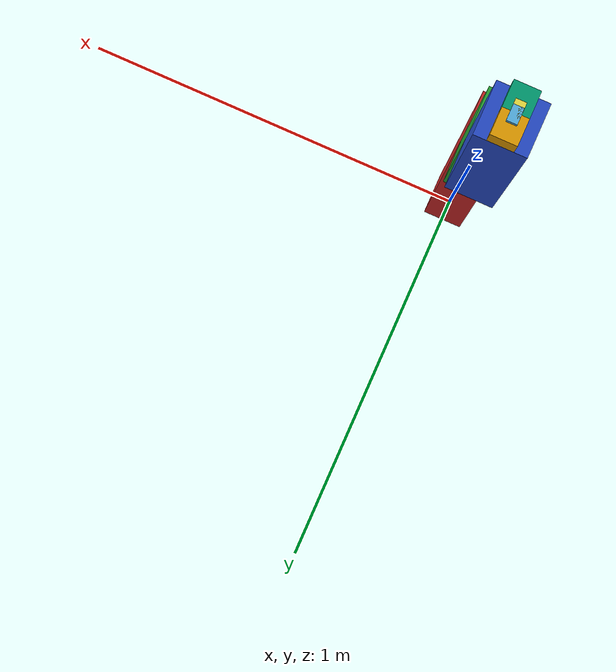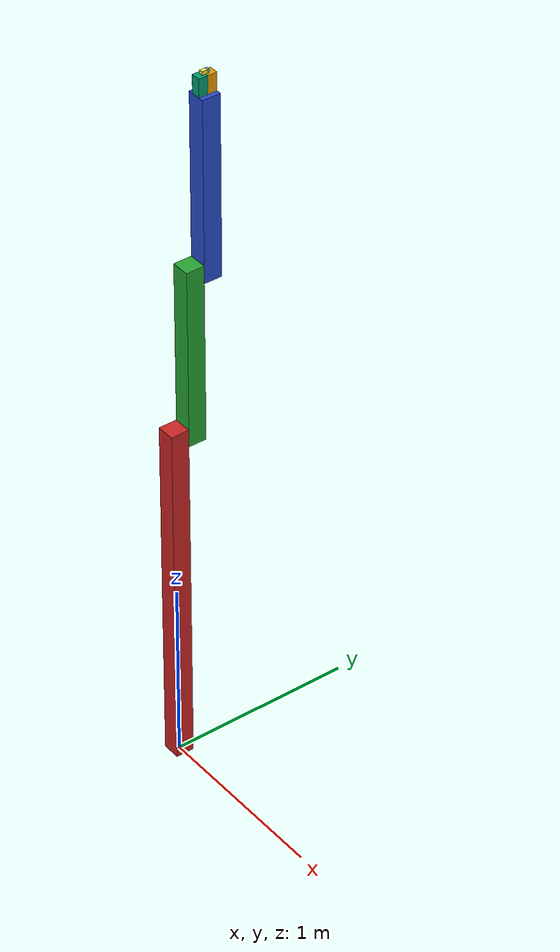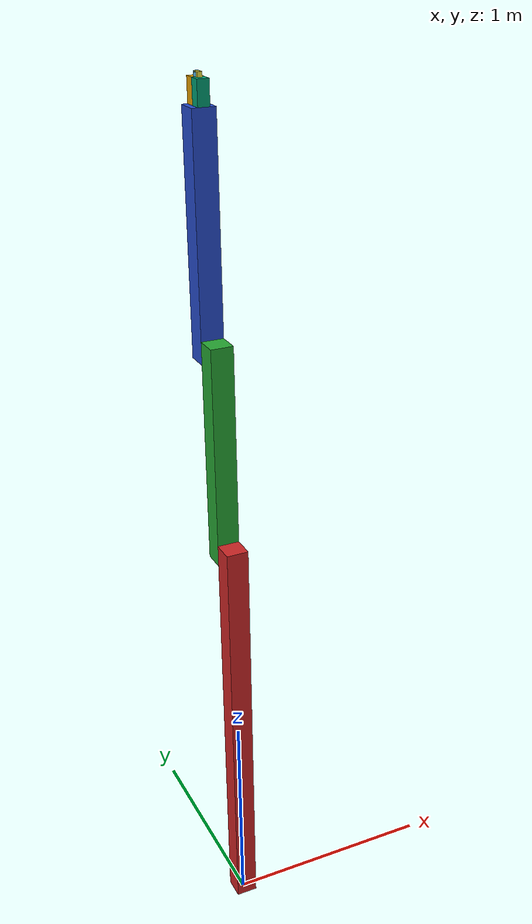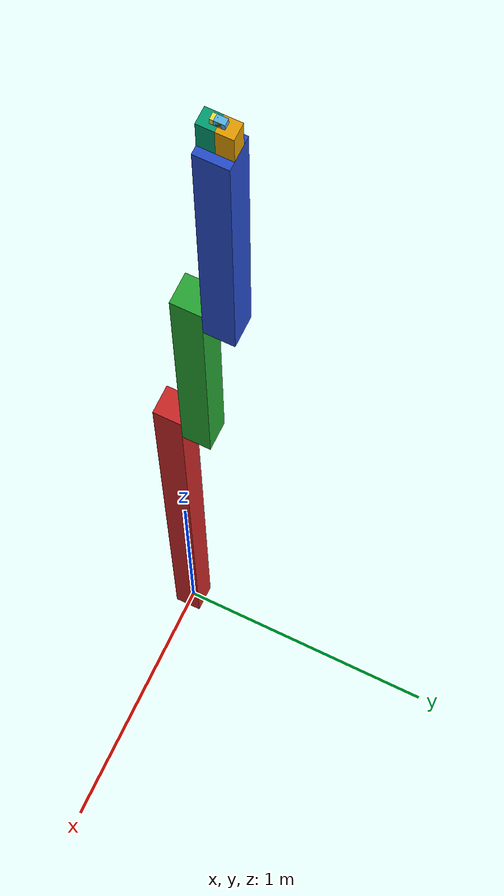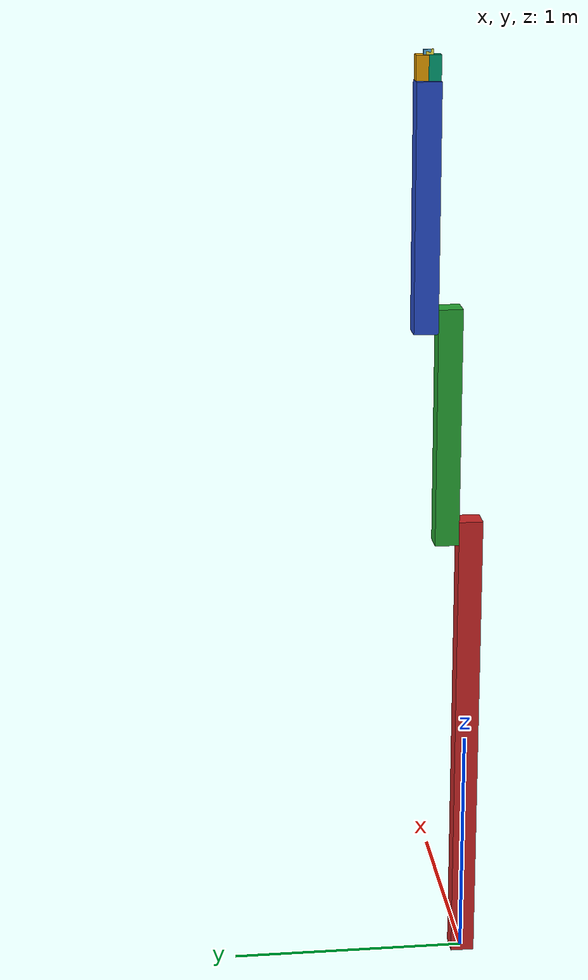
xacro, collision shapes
<?xml version="1.0"?>
<!-- Revolute-Revolute Manipulator -->
<robot name="rrbot" xmlns:xacro="http://www.ros.org/wiki/xacro">

  <!-- Constants for robot dimensions -->
  <xacro:property name="width" value="0.1" />   <!-- Beams are square in length and width -->
  <xacro:property name="height1" value="2" />   <!-- Link 1 -->
  <xacro:property name="height2" value="1" />   <!-- Link 2 -->
  <xacro:property name="height3" value="1" />   <!-- Link 3 -->
  <xacro:property name="axle_offset" value="0.05" /> <!-- Space between joint and end of beam -->
  <xacro:property name="damp" value="0.7" />    <!-- damping coefficient -->

  <!-- Default Inertial -->
  <xacro:macro name="default_inertial" params="z_value i_value mass">
    <inertial>
      <origin xyz="0 0 ${z_value}" rpy="0 0 0"/>
      <mass value="${mass}" />
      <inertia ixx="${i_value}" ixy="0.0" ixz="0.0"
               iyy="${i_value}" iyz="0.0"
               izz="${i_value}" />
      </inertial>
  </xacro:macro>

  <!-- Import Rviz colors -->
  <xacro:include filename="$(find rrbot)/urdf/materials.xacro" />

  <!-- Import gripper URDF -->
  <xacro:include filename="$(find rrbot)/urdf/gripper.xacro" />

  <!-- Base Link -->
  <link name="base_link">
    <visual>
      <origin xyz="0 0 ${height1/2}" rpy="0 0 0"/>
      <geometry>
	<box size="${width} ${width} ${height1}"/>
      </geometry>
      <material name="red"/>
    </visual>

    <collision>
      <origin xyz="0 0 ${height1/2}" rpy="0 0 0"/>
      <geometry>
	<box size="${width} ${width} ${height1}"/>
      </geometry>
    </collision>

    <xacro:default_inertial z_value="${height1/2}" i_value="1.0" mass="1"/>
  </link>

  <!-- Joint between Base Link and Middle Link -->
  <joint name="joint_base_mid" type="revolute">
    <parent link="base_link"/>
    <child link="mid_link"/>
    <origin xyz="0 ${width} ${height1 - axle_offset}" rpy="0 0 0"/>
    <axis xyz="0 1 0"/>
    <dynamics damping="${damp}"/>
    <limit effort="100.0" velocity="0.5" lower="-3.14" upper="3.14" />
  </joint>

  <!-- Middle Link -->
  <link name="mid_link">
    <visual>
      <origin xyz="0 0 ${height2/2 - axle_offset}" rpy="0 0 0"/>
      <geometry>
	<box size="${width} ${width} ${height2}"/>
      </geometry>
      <material name="green"/>
    </visual>

    <collision>
      <origin xyz="0 0 ${height2/2 - axle_offset}" rpy="0 0 0"/>
      <geometry>
	<box size="${width} ${width} ${height2}"/>
      </geometry>
    </collision>

    <xacro:default_inertial z_value="${height2/2 - axle_offset}" i_value="1.0" mass="1"/>
  </link>

  <!-- Joint between Middle Link and Top Link -->
  <joint name="joint_mid_top" type="revolute">
    <parent link="mid_link"/>
    <child link="top_link"/>
    <origin xyz="0 ${width} ${height2 - axle_offset*2}" rpy="0 0 0"/>
    <axis xyz="0 1 0"/>
    <dynamics damping="${damp}"/>
    <limit effort="100.0" velocity="0.5" lower="-3.14" upper="3.14" />
  </joint>

  <!-- Top Link -->
  <link name="top_link">
    <visual>
      <origin xyz="0 0 ${height3/2 - axle_offset}" rpy="0 0 0"/>
      <geometry>
	<box size="${width} ${width} ${height3}"/>
      </geometry>
      <material name="blue"/>
    </visual>

    <collision>
      <origin xyz="0 0 ${height3/2 - axle_offset}" rpy="0 0 0"/>
      <geometry>
	<box size="${width} ${width} ${height3}"/>
      </geometry>
    </collision>

    <xacro:default_inertial z_value="${height3/2 - axle_offset}" i_value="1.0" mass="1"/>
  </link>

</robot>

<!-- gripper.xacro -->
<robot xmlns:xacro="http://www.ros.org/wiki/xacro">

  <!-- Gripper -->
  <joint name="left_gripper_joint" type="revolute">
    <parent link="top_link"/>
    <child link="left_gripper"/>
    <origin xyz="0 0 ${height2 - axle_offset}" rpy="0 -1.57 0"/>
    <axis xyz="0 0 -1"/>
    <limit effort="30.0" lower="-0.548" upper="0.0" velocity="0.1"/>
  </joint>

  <link name="left_gripper">
    <visual>
      <origin rpy="0 0 0" xyz="0 0 0"/>
      <geometry>
        <mesh filename="package://rrbot/meshes/l_finger.dae"/>
      </geometry>
    </visual>

    <collision>
      <origin rpy="0 0 0" xyz="0.05 0.025 0"/>
      <geometry>
        <box size="0.1 0.05 0.05"/>
      </geometry>
    </collision>
    <xacro:default_inertial z_value="0" i_value="1e-6" mass="1"/>
  </link>

  <joint name="left_tip_joint" type="fixed">
    <parent link="left_gripper"/>
    <child link="left_tip"/>
  </joint>

  <link name="left_tip">
    <visual>
      <origin rpy="0 0 0" xyz="0.09137 0.00495 0"/>
      <geometry>
        <mesh filename="package://rrbot/meshes/l_finger_tip.dae"/>
      </geometry>
    </visual>

    <collision>
      <origin rpy="0 0 0" xyz="0.11 0.005 0"/>
      <geometry>
        <box size="0.02 0.03 0.02"/>
      </geometry>
    </collision>
    <xacro:default_inertial z_value="0" i_value="1e-6" mass="1e-5"/>
  </link>

  <joint name="right_gripper_joint" type="revolute">
    <parent link="top_link"/>
    <child link="right_gripper"/>
    <origin xyz="0 0 ${height2 - axle_offset}" rpy="0 -1.57 0"/>
    <axis xyz="0 0 1"/>
    <limit effort="30.0" lower="-0.548" upper="0.0" velocity="0.1"/>
  </joint>

  <link name="right_gripper">
    <visual>
      <origin rpy="3.1415 0 0" xyz="0 0 0"/>
      <geometry>
        <mesh filename="package://rrbot/meshes/l_finger.dae"/>
      </geometry>
    </visual>

    <collision>
      <origin rpy="0 0 0" xyz="0.05 -0.025 0"/>
      <geometry>
        <box size="0.1 0.05 0.05"/>
      </geometry>
    </collision>
    <xacro:default_inertial z_value="0" i_value="1e-6" mass="1"/>
  </link>

  <joint name="right_tip_joint" type="fixed">
    <parent link="right_gripper"/>
    <child link="right_tip"/>
  </joint>

  <link name="right_tip">
    <visual>
      <origin rpy="-3.1415 0 0" xyz="0.09137 0.00495 0"/>
      <geometry>
        <mesh filename="package://rrbot/meshes/l_finger_tip.dae"/>
      </geometry>
    </visual>

    <collision>
      <origin rpy="0 0 0" xyz="0.11 -0.005 0"/>
      <geometry>
        <box size="0.02 0.03 0.02"/>
      </geometry>
    </collision>
    <xacro:default_inertial z_value="0" i_value="1e-6" mass="1e-5"/>
  </link>

  <transmission name="gripper_transmission1">
    <type>transmission_interface/SimpleTransmission</type>
    <joint name="left_gripper_joint">
      <hardwareInterface>hardware_interface/EffortJointInterface</hardwareInterface>
    </joint>
    <actuator name="gripper_motor1">
      <mechanicalReduction>1</mechanicalReduction>
    </actuator>
  </transmission>

  <transmission name="gripper_transmission2">
    <type>transmission_interface/SimpleTransmission</type>
    <joint name="right_gripper_joint">
      <hardwareInterface>hardware_interface/EffortJointInterface</hardwareInterface>
    </joint>
    <actuator name="gripper_motor2">
      <mechanicalReduction>1</mechanicalReduction>
    </actuator>
  </transmission>

</robot>
